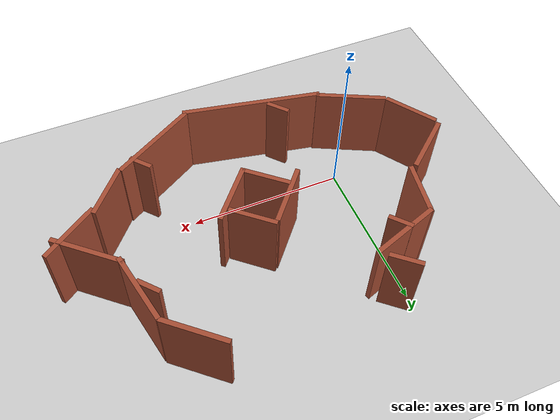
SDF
<sdf version="1.6">
 <world name="default">
  <model name="ground_plane">
   <static>1</static>
   <link name="link">
    <collision name="collision">
     <geometry><plane><normal>0 0 1</normal><size>100 100</size></plane></geometry>
     <surface><friction><ode><mu>100</mu><mu2>50</mu2></ode></friction></surface>
    </collision>
    <visual name="visual">
     <cast_shadows>0</cast_shadows>
     <geometry><plane><normal>0 0 1</normal><size>100 100</size></plane></geometry>
     <material>
      <script><uri>file://media/materials/scripts/gazebo.material</uri><name>Gazebo/Gray</name></script>
     </material>
    </visual>
   </link>
  </model>
  <model name="room5">
   <link name="Wall_37_clone_clone_0">
    <pose>1.55945 9.7192 0 0 -0 2.48357</pose>
    <visual name="Wall_37_Visual">
     <pose>0 0 1.25 0 -0 0</pose>
     <geometry><box><size>0.75 0.15 2.5</size></box></geometry>
     <material>
      <script><uri>file://media/materials/scripts/gazebo.material</uri><name>Gazebo/Bricks</name></script>
      <ambient>1 1 1 1</ambient>
      <shader type="pixel"/>
     </material>
     <meta><layer>0</layer></meta>
    </visual>
    <collision name="Wall_37_Collision">
     <pose>0 0 1.25 0 -0 0</pose>
     <geometry><box><size>0.75 0.15 2.5</size></box></geometry>
     <surface>
      <friction>
       <ode><mu>1</mu><mu2>1</mu2><fdir1>0 0 0</fdir1><slip1>0</slip1><slip2>0</slip2></ode>
       <torsional>
        <coefficient>1</coefficient>
        <patch_radius>0</patch_radius>
        <surface_radius>0</surface_radius>
        <use_patch_radius>1</use_patch_radius>
        <ode><slip>0</slip></ode>
       </torsional>
      </friction>
      <bounce><restitution_coefficient>0</restitution_coefficient><threshold>1e+06</threshold></bounce>
      <contact>
       <collide_without_contact>0</collide_without_contact>
       <collide_without_contact_bitmask>1</collide_without_contact_bitmask>
       <collide_bitmask>1</collide_bitmask>
       <ode>
        <soft_cfm>0</soft_cfm>
        <soft_erp>0.2</soft_erp>
        <kp>1e+13</kp>
        <kd>1</kd>
        <max_vel>0.01</max_vel>
        <min_depth>0</min_depth>
       </ode>
       <bullet>
        <split_impulse>1</split_impulse>
        <split_impulse_penetration_threshold>-0.01</split_impulse_penetration_threshold>
        <soft_cfm>0</soft_cfm>
        <soft_erp>0.2</soft_erp>
        <kp>1e+13</kp>
        <kd>1</kd>
       </bullet>
      </contact>
     </surface>
    </collision>
   </link>
   <link name="Wall_37_clone_clone_1">
    <pose>-3.00765 8.25193 0 0 -0 2.48357</pose>
    <visual name="Wall_37_Visual">
     <pose>0 0 1.25 0 -0 0</pose>
     <geometry><box><size>0.75 0.15 2.5</size></box></geometry>
     <material>
      <script><uri>file://media/materials/scripts/gazebo.material</uri><name>Gazebo/Bricks</name></script>
      <ambient>1 1 1 1</ambient>
      <shader type="pixel"/>
     </material>
     <meta><layer>0</layer></meta>
    </visual>
    <collision name="Wall_37_Collision">
     <pose>0 0 1.25 0 -0 0</pose>
     <geometry><box><size>0.75 0.15 2.5</size></box></geometry>
     <surface>
      <friction>
       <ode><mu>1</mu><mu2>1</mu2><fdir1>0 0 0</fdir1><slip1>0</slip1><slip2>0</slip2></ode>
       <torsional>
        <coefficient>1</coefficient>
        <patch_radius>0</patch_radius>
        <surface_radius>0</surface_radius>
        <use_patch_radius>1</use_patch_radius>
        <ode><slip>0</slip></ode>
       </torsional>
      </friction>
      <bounce><restitution_coefficient>0</restitution_coefficient><threshold>1e+06</threshold></bounce>
      <contact>
       <collide_without_contact>0</collide_without_contact>
       <collide_without_contact_bitmask>1</collide_without_contact_bitmask>
       <collide_bitmask>1</collide_bitmask>
       <ode>
        <soft_cfm>0</soft_cfm>
        <soft_erp>0.2</soft_erp>
        <kp>1e+13</kp>
        <kd>1</kd>
        <max_vel>0.01</max_vel>
        <min_depth>0</min_depth>
       </ode>
       <bullet>
        <split_impulse>1</split_impulse>
        <split_impulse_penetration_threshold>-0.01</split_impulse_penetration_threshold>
        <soft_cfm>0</soft_cfm>
        <soft_erp>0.2</soft_erp>
        <kp>1e+13</kp>
        <kd>1</kd>
       </bullet>
      </contact>
     </surface>
    </collision>
   </link>
   <link name="Wall_37_clone_clone_2">
    <pose>4.01832 4.61639 0 0 -0 2.48357</pose>
    <visual name="Wall_37_Visual">
     <pose>0 0 1.25 0 -0 0</pose>
     <geometry><box><size>0.75 0.15 2.5</size></box></geometry>
     <material>
      <script><uri>file://media/materials/scripts/gazebo.material</uri><name>Gazebo/Bricks</name></script>
      <ambient>1 1 1 1</ambient>
      <shader type="pixel"/>
     </material>
     <meta><layer>0</layer></meta>
    </visual>
    <collision name="Wall_37_Collision">
     <pose>0 0 1.25 0 -0 0</pose>
     <geometry><box><size>0.75 0.15 2.5</size></box></geometry>
     <surface>
      <friction>
       <ode><mu>1</mu><mu2>1</mu2><fdir1>0 0 0</fdir1><slip1>0</slip1><slip2>0</slip2></ode>
       <torsional>
        <coefficient>1</coefficient>
        <patch_radius>0</patch_radius>
        <surface_radius>0</surface_radius>
        <use_patch_radius>1</use_patch_radius>
        <ode><slip>0</slip></ode>
       </torsional>
      </friction>
      <bounce><restitution_coefficient>0</restitution_coefficient><threshold>1e+06</threshold></bounce>
      <contact>
       <collide_without_contact>0</collide_without_contact>
       <collide_without_contact_bitmask>1</collide_without_contact_bitmask>
       <collide_bitmask>1</collide_bitmask>
       <ode>
        <soft_cfm>0</soft_cfm>
        <soft_erp>0.2</soft_erp>
        <kp>1e+13</kp>
        <kd>1</kd>
        <max_vel>0.01</max_vel>
        <min_depth>0</min_depth>
       </ode>
       <bullet>
        <split_impulse>1</split_impulse>
        <split_impulse_penetration_threshold>-0.01</split_impulse_penetration_threshold>
        <soft_cfm>0</soft_cfm>
        <soft_erp>0.2</soft_erp>
        <kp>1e+13</kp>
        <kd>1</kd>
       </bullet>
      </contact>
     </surface>
    </collision>
   </link>
   <link name="Wall_37_clone_clone_7">
    <pose>-3.24115 3.89196 0 0 -0 2.48357</pose>
    <visual name="Wall_37_Visual">
     <pose>0 0 1.25 0 -0 0</pose>
     <geometry><box><size>0.75 0.15 2.5</size></box></geometry>
     <material>
      <script><uri>file://media/materials/scripts/gazebo.material</uri><name>Gazebo/Bricks</name></script>
      <ambient>1 1 1 1</ambient>
      <shader type="pixel"/>
     </material>
     <meta><layer>0</layer></meta>
    </visual>
    <collision name="Wall_37_Collision">
     <pose>0 0 1.25 0 -0 0</pose>
     <geometry><box><size>0.75 0.15 2.5</size></box></geometry>
     <surface>
      <friction>
       <ode><mu>1</mu><mu2>1</mu2><fdir1>0 0 0</fdir1><slip1>0</slip1><slip2>0</slip2></ode>
       <torsional>
        <coefficient>1</coefficient>
        <patch_radius>0</patch_radius>
        <surface_radius>0</surface_radius>
        <use_patch_radius>1</use_patch_radius>
        <ode><slip>0</slip></ode>
       </torsional>
      </friction>
      <bounce><restitution_coefficient>0</restitution_coefficient><threshold>1e+06</threshold></bounce>
      <contact>
       <collide_without_contact>0</collide_without_contact>
       <collide_without_contact_bitmask>1</collide_without_contact_bitmask>
       <collide_bitmask>1</collide_bitmask>
       <ode>
        <soft_cfm>0</soft_cfm>
        <soft_erp>0.2</soft_erp>
        <kp>1e+13</kp>
        <kd>1</kd>
        <max_vel>0.01</max_vel>
        <min_depth>0</min_depth>
       </ode>
       <bullet>
        <split_impulse>1</split_impulse>
        <split_impulse_penetration_threshold>-0.01</split_impulse_penetration_threshold>
        <soft_cfm>0</soft_cfm>
        <soft_erp>0.2</soft_erp>
        <kp>1e+13</kp>
        <kd>1</kd>
       </bullet>
      </contact>
     </surface>
    </collision>
   </link>
   <link name="Wall_41">
    <pose>3.77567 3.35928 0 0 -0 2.61799</pose>
    <visual name="Wall_41_Visual">
     <pose>0 0 1.25 0 -0 0</pose>
     <geometry><box><size>1 0.15 2.5</size></box></geometry>
     <material>
      <script><uri>file://media/materials/scripts/gazebo.material</uri><name>Gazebo/Bricks</name></script>
      <ambient>1 1 1 1</ambient>
      <shader type="pixel"/>
     </material>
     <meta><layer>0</layer></meta>
    </visual>
    <collision name="Wall_41_Collision">
     <pose>0 0 1.25 0 -0 0</pose>
     <geometry><box><size>1 0.15 2.5</size></box></geometry>
     <surface>
      <friction>
       <ode><mu>1</mu><mu2>1</mu2><fdir1>0 0 0</fdir1><slip1>0</slip1><slip2>0</slip2></ode>
       <torsional>
        <coefficient>1</coefficient>
        <patch_radius>0</patch_radius>
        <surface_radius>0</surface_radius>
        <use_patch_radius>1</use_patch_radius>
        <ode><slip>0</slip></ode>
       </torsional>
      </friction>
      <bounce><restitution_coefficient>0</restitution_coefficient><threshold>1e+06</threshold></bounce>
      <contact>
       <collide_without_contact>0</collide_without_contact>
       <collide_without_contact_bitmask>1</collide_without_contact_bitmask>
       <collide_bitmask>1</collide_bitmask>
       <ode>
        <soft_cfm>0</soft_cfm>
        <soft_erp>0.2</soft_erp>
        <kp>1e+13</kp>
        <kd>1</kd>
        <max_vel>0.01</max_vel>
        <min_depth>0</min_depth>
       </ode>
       <bullet>
        <split_impulse>1</split_impulse>
        <split_impulse_penetration_threshold>-0.01</split_impulse_penetration_threshold>
        <soft_cfm>0</soft_cfm>
        <soft_erp>0.2</soft_erp>
        <kp>1e+13</kp>
        <kd>1</kd>
       </bullet>
      </contact>
     </surface>
    </collision>
   </link>
   <link name="Wall_42">
    <pose>4.96556 5.63009 0 0 -0 1.59627</pose>
    <visual name="Wall_42_Visual">
     <pose>0 0 1.25 0 -0 0</pose>
     <geometry><box><size>1.75 0.15 2.5</size></box></geometry>
     <material>
      <script><uri>file://media/materials/scripts/gazebo.material</uri><name>Gazebo/Bricks</name></script>
      <ambient>1 1 1 1</ambient>
      <shader type="pixel"/>
     </material>
     <meta><layer>0</layer></meta>
    </visual>
    <collision name="Wall_42_Collision">
     <pose>0 0 1.25 0 -0 0</pose>
     <geometry><box><size>1.75 0.15 2.5</size></box></geometry>
     <surface>
      <friction>
       <ode><mu>1</mu><mu2>1</mu2><fdir1>0 0 0</fdir1><slip1>0</slip1><slip2>0</slip2></ode>
       <torsional>
        <coefficient>1</coefficient>
        <patch_radius>0</patch_radius>
        <surface_radius>0</surface_radius>
        <use_patch_radius>1</use_patch_radius>
        <ode><slip>0</slip></ode>
       </torsional>
      </friction>
      <bounce><restitution_coefficient>0</restitution_coefficient><threshold>1e+06</threshold></bounce>
      <contact>
       <collide_without_contact>0</collide_without_contact>
       <collide_without_contact_bitmask>1</collide_without_contact_bitmask>
       <collide_bitmask>1</collide_bitmask>
       <ode>
        <soft_cfm>0</soft_cfm>
        <soft_erp>0.2</soft_erp>
        <kp>1e+13</kp>
        <kd>1</kd>
        <max_vel>0.01</max_vel>
        <min_depth>0</min_depth>
       </ode>
       <bullet>
        <split_impulse>1</split_impulse>
        <split_impulse_penetration_threshold>-0.01</split_impulse_penetration_threshold>
        <soft_cfm>0</soft_cfm>
        <soft_erp>0.2</soft_erp>
        <kp>1e+13</kp>
        <kd>1</kd>
       </bullet>
      </contact>
     </surface>
    </collision>
   </link>
   <link name="Wall_43">
    <pose>4.05178 4.29362 0 0 -0 0.523599</pose>
    <visual name="Wall_43_Visual">
     <pose>0 0 1.25 0 -0 0</pose>
     <geometry><box><size>2.25 0.15 2.5</size></box></geometry>
     <material>
      <script><uri>file://media/materials/scripts/gazebo.material</uri><name>Gazebo/Bricks</name></script>
      <ambient>1 1 1 1</ambient>
      <shader type="pixel"/>
     </material>
     <meta><layer>0</layer></meta>
    </visual>
    <collision name="Wall_43_Collision">
     <pose>0 0 1.25 0 -0 0</pose>
     <geometry><box><size>2.25 0.15 2.5</size></box></geometry>
     <surface>
      <friction>
       <ode><mu>1</mu><mu2>1</mu2><fdir1>0 0 0</fdir1><slip1>0</slip1><slip2>0</slip2></ode>
       <torsional>
        <coefficient>1</coefficient>
        <patch_radius>0</patch_radius>
        <surface_radius>0</surface_radius>
        <use_patch_radius>1</use_patch_radius>
        <ode><slip>0</slip></ode>
       </torsional>
      </friction>
      <bounce><restitution_coefficient>0</restitution_coefficient><threshold>1e+06</threshold></bounce>
      <contact>
       <collide_without_contact>0</collide_without_contact>
       <collide_without_contact_bitmask>1</collide_without_contact_bitmask>
       <collide_bitmask>1</collide_bitmask>
       <ode>
        <soft_cfm>0</soft_cfm>
        <soft_erp>0.2</soft_erp>
        <kp>1e+13</kp>
        <kd>1</kd>
        <max_vel>0.01</max_vel>
        <min_depth>0</min_depth>
       </ode>
       <bullet>
        <split_impulse>1</split_impulse>
        <split_impulse_penetration_threshold>-0.01</split_impulse_penetration_threshold>
        <soft_cfm>0</soft_cfm>
        <soft_erp>0.2</soft_erp>
        <kp>1e+13</kp>
        <kd>1</kd>
       </bullet>
      </contact>
     </surface>
    </collision>
   </link>
   <link name="Wall_44">
    <pose>5.71742 8.7902 0 0 -0 2.35619</pose>
    <visual name="Wall_44_Visual">
     <pose>0 0 1.25 0 -0 0</pose>
     <geometry><box><size>1.75 0.15 2.5</size></box></geometry>
     <material>
      <script><uri>file://media/materials/scripts/gazebo.material</uri><name>Gazebo/Bricks</name></script>
      <ambient>1 1 1 1</ambient>
      <shader type="pixel"/>
     </material>
     <meta><layer>0</layer></meta>
    </visual>
    <collision name="Wall_44_Collision">
     <pose>0 0 1.25 0 -0 0</pose>
     <geometry><box><size>1.75 0.15 2.5</size></box></geometry>
     <surface>
      <friction>
       <ode><mu>1</mu><mu2>1</mu2><fdir1>0 0 0</fdir1><slip1>0</slip1><slip2>0</slip2></ode>
       <torsional>
        <coefficient>1</coefficient>
        <patch_radius>0</patch_radius>
        <surface_radius>0</surface_radius>
        <use_patch_radius>1</use_patch_radius>
        <ode><slip>0</slip></ode>
       </torsional>
      </friction>
      <bounce><restitution_coefficient>0</restitution_coefficient><threshold>1e+06</threshold></bounce>
      <contact>
       <collide_without_contact>0</collide_without_contact>
       <collide_without_contact_bitmask>1</collide_without_contact_bitmask>
       <collide_bitmask>1</collide_bitmask>
       <ode>
        <soft_cfm>0</soft_cfm>
        <soft_erp>0.2</soft_erp>
        <kp>1e+13</kp>
        <kd>1</kd>
        <max_vel>0.01</max_vel>
        <min_depth>0</min_depth>
       </ode>
       <bullet>
        <split_impulse>1</split_impulse>
        <split_impulse_penetration_threshold>-0.01</split_impulse_penetration_threshold>
        <soft_cfm>0</soft_cfm>
        <soft_erp>0.2</soft_erp>
        <kp>1e+13</kp>
        <kd>1</kd>
       </bullet>
      </contact>
     </surface>
    </collision>
   </link>
   <link name="Wall_45">
    <pose>5.74153 7.27704 0 0 -0 0.875381</pose>
    <visual name="Wall_45_Visual">
     <pose>0 0 1.25 0 -0 0</pose>
     <geometry><box><size>2 0.15 2.5</size></box></geometry>
     <material>
      <script><uri>file://media/materials/scripts/gazebo.material</uri><name>Gazebo/Bricks</name></script>
      <ambient>1 1 1 1</ambient>
      <shader type="pixel"/>
     </material>
     <meta><layer>0</layer></meta>
    </visual>
    <collision name="Wall_45_Collision">
     <pose>0 0 1.25 0 -0 0</pose>
     <geometry><box><size>2 0.15 2.5</size></box></geometry>
     <surface>
      <friction>
       <ode><mu>1</mu><mu2>1</mu2><fdir1>0 0 0</fdir1><slip1>0</slip1><slip2>0</slip2></ode>
       <torsional>
        <coefficient>1</coefficient>
        <patch_radius>0</patch_radius>
        <surface_radius>0</surface_radius>
        <use_patch_radius>1</use_patch_radius>
        <ode><slip>0</slip></ode>
       </torsional>
      </friction>
      <bounce><restitution_coefficient>0</restitution_coefficient><threshold>1e+06</threshold></bounce>
      <contact>
       <collide_without_contact>0</collide_without_contact>
       <collide_without_contact_bitmask>1</collide_without_contact_bitmask>
       <collide_bitmask>1</collide_bitmask>
       <ode>
        <soft_cfm>0</soft_cfm>
        <soft_erp>0.2</soft_erp>
        <kp>1e+13</kp>
        <kd>1</kd>
        <max_vel>0.01</max_vel>
        <min_depth>0</min_depth>
       </ode>
       <bullet>
        <split_impulse>1</split_impulse>
        <split_impulse_penetration_threshold>-0.01</split_impulse_penetration_threshold>
        <soft_cfm>0</soft_cfm>
        <soft_erp>0.2</soft_erp>
        <kp>1e+13</kp>
        <kd>1</kd>
       </bullet>
      </contact>
     </surface>
    </collision>
   </link>
   <link name="Wall_46">
    <pose>3.99311 9.72466 0 0 -0 2.87979</pose>
    <visual name="Wall_46_Visual">
     <pose>0 0 1.25 0 -0 0</pose>
     <geometry><box><size>2.25 0.15 2.5</size></box></geometry>
     <material>
      <script><uri>file://media/materials/scripts/gazebo.material</uri><name>Gazebo/Bricks</name></script>
      <ambient>1 1 1 1</ambient>
      <shader type="pixel"/>
     </material>
     <meta><layer>0</layer></meta>
    </visual>
    <collision name="Wall_46_Collision">
     <pose>0 0 1.25 0 -0 0</pose>
     <geometry><box><size>2.25 0.15 2.5</size></box></geometry>
     <surface>
      <friction>
       <ode><mu>1</mu><mu2>1</mu2><fdir1>0 0 0</fdir1><slip1>0</slip1><slip2>0</slip2></ode>
       <torsional>
        <coefficient>1</coefficient>
        <patch_radius>0</patch_radius>
        <surface_radius>0</surface_radius>
        <use_patch_radius>1</use_patch_radius>
        <ode><slip>0</slip></ode>
       </torsional>
      </friction>
      <bounce><restitution_coefficient>0</restitution_coefficient><threshold>1e+06</threshold></bounce>
      <contact>
       <collide_without_contact>0</collide_without_contact>
       <collide_without_contact_bitmask>1</collide_without_contact_bitmask>
       <collide_bitmask>1</collide_bitmask>
       <ode>
        <soft_cfm>0</soft_cfm>
        <soft_erp>0.2</soft_erp>
        <kp>1e+13</kp>
        <kd>1</kd>
        <max_vel>0.01</max_vel>
        <min_depth>0</min_depth>
       </ode>
       <bullet>
        <split_impulse>1</split_impulse>
        <split_impulse_penetration_threshold>-0.01</split_impulse_penetration_threshold>
        <soft_cfm>0</soft_cfm>
        <soft_erp>0.2</soft_erp>
        <kp>1e+13</kp>
        <kd>1</kd>
       </bullet>
      </contact>
     </surface>
    </collision>
   </link>
   <link name="Wall_47">
    <pose>0.765407 10.0627 0 0 -0 3.14159</pose>
    <visual name="Wall_47_Visual">
     <pose>0 0 1.25 0 -0 0</pose>
     <geometry><box><size>4.5 0.15 2.5</size></box></geometry>
     <material>
      <script><uri>file://media/materials/scripts/gazebo.material</uri><name>Gazebo/Bricks</name></script>
      <ambient>1 1 1 1</ambient>
      <shader type="pixel"/>
     </material>
     <meta><layer>0</layer></meta>
    </visual>
    <collision name="Wall_47_Collision">
     <pose>0 0 1.25 0 -0 0</pose>
     <geometry><box><size>4.5 0.15 2.5</size></box></geometry>
     <surface>
      <friction>
       <ode><mu>1</mu><mu2>1</mu2><fdir1>0 0 0</fdir1><slip1>0</slip1><slip2>0</slip2></ode>
       <torsional>
        <coefficient>1</coefficient>
        <patch_radius>0</patch_radius>
        <surface_radius>0</surface_radius>
        <use_patch_radius>1</use_patch_radius>
        <ode><slip>0</slip></ode>
       </torsional>
      </friction>
      <bounce><restitution_coefficient>0</restitution_coefficient><threshold>1e+06</threshold></bounce>
      <contact>
       <collide_without_contact>0</collide_without_contact>
       <collide_without_contact_bitmask>1</collide_without_contact_bitmask>
       <collide_bitmask>1</collide_bitmask>
       <ode>
        <soft_cfm>0</soft_cfm>
        <soft_erp>0.2</soft_erp>
        <kp>1e+13</kp>
        <kd>1</kd>
        <max_vel>0.01</max_vel>
        <min_depth>0</min_depth>
       </ode>
       <bullet>
        <split_impulse>1</split_impulse>
        <split_impulse_penetration_threshold>-0.01</split_impulse_penetration_threshold>
        <soft_cfm>0</soft_cfm>
        <soft_erp>0.2</soft_erp>
        <kp>1e+13</kp>
        <kd>1</kd>
       </bullet>
      </contact>
     </surface>
    </collision>
   </link>
   <link name="Wall_48">
    <pose>-2.51161 9.03729 0 0 0 -2.41977</pose>
    <visual name="Wall_48_Visual">
     <pose>0 0 1.25 0 -0 0</pose>
     <geometry><box><size>3 0.15 2.5</size></box></geometry>
     <material>
      <script><uri>file://media/materials/scripts/gazebo.material</uri><name>Gazebo/Bricks</name></script>
      <ambient>1 1 1 1</ambient>
      <shader type="pixel"/>
     </material>
     <meta><layer>0</layer></meta>
    </visual>
    <collision name="Wall_48_Collision">
     <pose>0 0 1.25 0 -0 0</pose>
     <geometry><box><size>3 0.15 2.5</size></box></geometry>
     <surface>
      <friction>
       <ode><mu>1</mu><mu2>1</mu2><fdir1>0 0 0</fdir1><slip1>0</slip1><slip2>0</slip2></ode>
       <torsional>
        <coefficient>1</coefficient>
        <patch_radius>0</patch_radius>
        <surface_radius>0</surface_radius>
        <use_patch_radius>1</use_patch_radius>
        <ode><slip>0</slip></ode>
       </torsional>
      </friction>
      <bounce><restitution_coefficient>0</restitution_coefficient><threshold>1e+06</threshold></bounce>
      <contact>
       <collide_without_contact>0</collide_without_contact>
       <collide_without_contact_bitmask>1</collide_without_contact_bitmask>
       <collide_bitmask>1</collide_bitmask>
       <ode>
        <soft_cfm>0</soft_cfm>
        <soft_erp>0.2</soft_erp>
        <kp>1e+13</kp>
        <kd>1</kd>
        <max_vel>0.01</max_vel>
        <min_depth>0</min_depth>
       </ode>
       <bullet>
        <split_impulse>1</split_impulse>
        <split_impulse_penetration_threshold>-0.01</split_impulse_penetration_threshold>
        <soft_cfm>0</soft_cfm>
        <soft_erp>0.2</soft_erp>
        <kp>1e+13</kp>
        <kd>1</kd>
       </bullet>
      </contact>
     </surface>
    </collision>
   </link>
   <link name="Wall_49">
    <pose>-4.79774 5.36141 0 0 0 -0.5236</pose>
    <visual name="Wall_49_Visual">
     <pose>0 0 1.25 0 -0 0</pose>
     <geometry><box><size>2.25 0.15 2.5</size></box></geometry>
     <material>
      <script><uri>file://media/materials/scripts/gazebo.material</uri><name>Gazebo/Bricks</name></script>
      <ambient>1 1 1 1</ambient>
      <shader type="pixel"/>
     </material>
     <meta><layer>0</layer></meta>
    </visual>
    <collision name="Wall_49_Collision">
     <pose>0 0 1.25 0 -0 0</pose>
     <geometry><box><size>2.25 0.15 2.5</size></box></geometry>
     <surface>
      <friction>
       <ode><mu>1</mu><mu2>1</mu2><fdir1>0 0 0</fdir1><slip1>0</slip1><slip2>0</slip2></ode>
       <torsional>
        <coefficient>1</coefficient>
        <patch_radius>0</patch_radius>
        <surface_radius>0</surface_radius>
        <use_patch_radius>1</use_patch_radius>
        <ode><slip>0</slip></ode>
       </torsional>
      </friction>
      <bounce><restitution_coefficient>0</restitution_coefficient><threshold>1e+06</threshold></bounce>
      <contact>
       <collide_without_contact>0</collide_without_contact>
       <collide_without_contact_bitmask>1</collide_without_contact_bitmask>
       <collide_bitmask>1</collide_bitmask>
       <ode>
        <soft_cfm>0</soft_cfm>
        <soft_erp>0.2</soft_erp>
        <kp>1e+13</kp>
        <kd>1</kd>
        <max_vel>0.01</max_vel>
        <min_depth>0</min_depth>
       </ode>
       <bullet>
        <split_impulse>1</split_impulse>
        <split_impulse_penetration_threshold>-0.01</split_impulse_penetration_threshold>
        <soft_cfm>0</soft_cfm>
        <soft_erp>0.2</soft_erp>
        <kp>1e+13</kp>
        <kd>1</kd>
       </bullet>
      </contact>
     </surface>
    </collision>
   </link>
   <link name="Wall_50">
    <pose>-4.09023 7.35677 0 0 0 -2.0944</pose>
    <visual name="Wall_50_Visual">
     <pose>0 0 1.25 0 -0 0</pose>
     <geometry><box><size>1.75 0.15 2.5</size></box></geometry>
     <material>
      <script><uri>file://media/materials/scripts/gazebo.material</uri><name>Gazebo/Bricks</name></script>
      <ambient>1 1 1 1</ambient>
      <shader type="pixel"/>
     </material>
     <meta><layer>0</layer></meta>
    </visual>
    <collision name="Wall_50_Collision">
     <pose>0 0 1.25 0 -0 0</pose>
     <geometry><box><size>1.75 0.15 2.5</size></box></geometry>
     <surface>
      <friction>
       <ode><mu>1</mu><mu2>1</mu2><fdir1>0 0 0</fdir1><slip1>0</slip1><slip2>0</slip2></ode>
       <torsional>
        <coefficient>1</coefficient>
        <patch_radius>0</patch_radius>
        <surface_radius>0</surface_radius>
        <use_patch_radius>1</use_patch_radius>
        <ode><slip>0</slip></ode>
       </torsional>
      </friction>
      <bounce><restitution_coefficient>0</restitution_coefficient><threshold>1e+06</threshold></bounce>
      <contact>
       <collide_without_contact>0</collide_without_contact>
       <collide_without_contact_bitmask>1</collide_without_contact_bitmask>
       <collide_bitmask>1</collide_bitmask>
       <ode>
        <soft_cfm>0</soft_cfm>
        <soft_erp>0.2</soft_erp>
        <kp>1e+13</kp>
        <kd>1</kd>
        <max_vel>0.01</max_vel>
        <min_depth>0</min_depth>
       </ode>
       <bullet>
        <split_impulse>1</split_impulse>
        <split_impulse_penetration_threshold>-0.01</split_impulse_penetration_threshold>
        <soft_cfm>0</soft_cfm>
        <soft_erp>0.2</soft_erp>
        <kp>1e+13</kp>
        <kd>1</kd>
       </bullet>
      </contact>
     </surface>
    </collision>
   </link>
   <link name="Wall_51">
    <pose>-3.51953 3.90576 0 0 0 -1.1821</pose>
    <visual name="Wall_51_Visual">
     <pose>0 0 1.25 0 -0 0</pose>
     <geometry><box><size>2.25 0.15 2.5</size></box></geometry>
     <material>
      <script><uri>file://media/materials/scripts/gazebo.material</uri><name>Gazebo/Bricks</name></script>
      <ambient>1 1 1 1</ambient>
      <shader type="pixel"/>
     </material>
     <meta><layer>0</layer></meta>
    </visual>
    <collision name="Wall_51_Collision">
     <pose>0 0 1.25 0 -0 0</pose>
     <geometry><box><size>2.25 0.15 2.5</size></box></geometry>
     <surface>
      <friction>
       <ode><mu>1</mu><mu2>1</mu2><fdir1>0 0 0</fdir1><slip1>0</slip1><slip2>0</slip2></ode>
       <torsional>
        <coefficient>1</coefficient>
        <patch_radius>0</patch_radius>
        <surface_radius>0</surface_radius>
        <use_patch_radius>1</use_patch_radius>
        <ode><slip>0</slip></ode>
       </torsional>
      </friction>
      <bounce><restitution_coefficient>0</restitution_coefficient><threshold>1e+06</threshold></bounce>
      <contact>
       <collide_without_contact>0</collide_without_contact>
       <collide_without_contact_bitmask>1</collide_without_contact_bitmask>
       <collide_bitmask>1</collide_bitmask>
       <ode>
        <soft_cfm>0</soft_cfm>
        <soft_erp>0.2</soft_erp>
        <kp>1e+13</kp>
        <kd>1</kd>
        <max_vel>0.01</max_vel>
        <min_depth>0</min_depth>
       </ode>
       <bullet>
        <split_impulse>1</split_impulse>
        <split_impulse_penetration_threshold>-0.01</split_impulse_penetration_threshold>
        <soft_cfm>0</soft_cfm>
        <soft_erp>0.2</soft_erp>
        <kp>1e+13</kp>
        <kd>1</kd>
       </bullet>
      </contact>
     </surface>
    </collision>
   </link>
   <link name="Wall_52">
    <pose>-5.23027 6.06775 0 0 0 -2.35619</pose>
    <visual name="Wall_52_Visual">
     <pose>0 0 1.25 0 -0 0</pose>
     <geometry><box><size>2 0.15 2.5</size></box></geometry>
     <material>
      <script><uri>file://media/materials/scripts/gazebo.material</uri><name>Gazebo/Bricks</name></script>
      <ambient>1 1 1 1</ambient>
      <shader type="pixel"/>
     </material>
     <meta><layer>0</layer></meta>
    </visual>
    <collision name="Wall_52_Collision">
     <pose>0 0 1.25 0 -0 0</pose>
     <geometry><box><size>2 0.15 2.5</size></box></geometry>
     <surface>
      <friction>
       <ode><mu>1</mu><mu2>1</mu2><fdir1>0 0 0</fdir1><slip1>0</slip1><slip2>0</slip2></ode>
       <torsional>
        <coefficient>1</coefficient>
        <patch_radius>0</patch_radius>
        <surface_radius>0</surface_radius>
        <use_patch_radius>1</use_patch_radius>
        <ode><slip>0</slip></ode>
       </torsional>
      </friction>
      <bounce><restitution_coefficient>0</restitution_coefficient><threshold>1e+06</threshold></bounce>
      <contact>
       <collide_without_contact>0</collide_without_contact>
       <collide_without_contact_bitmask>1</collide_without_contact_bitmask>
       <collide_bitmask>1</collide_bitmask>
       <ode>
        <soft_cfm>0</soft_cfm>
        <soft_erp>0.2</soft_erp>
        <kp>1e+13</kp>
        <kd>1</kd>
        <max_vel>0.01</max_vel>
        <min_depth>0</min_depth>
       </ode>
       <bullet>
        <split_impulse>1</split_impulse>
        <split_impulse_penetration_threshold>-0.01</split_impulse_penetration_threshold>
        <soft_cfm>0</soft_cfm>
        <soft_erp>0.2</soft_erp>
        <kp>1e+13</kp>
        <kd>1</kd>
       </bullet>
      </contact>
     </surface>
    </collision>
   </link>
   <link name="Wall_53">
    <pose>-2.23543 2.35912 0 0 0 -0.523599</pose>
    <visual name="Wall_53_Visual">
     <pose>0 0 1.25 0 -0 0</pose>
     <geometry><box><size>2 0.15 2.5</size></box></geometry>
     <material>
      <script><uri>file://media/materials/scripts/gazebo.material</uri><name>Gazebo/Bricks</name></script>
      <ambient>1 1 1 1</ambient>
      <shader type="pixel"/>
     </material>
     <meta><layer>0</layer></meta>
    </visual>
    <collision name="Wall_53_Collision">
     <pose>0 0 1.25 0 -0 0</pose>
     <geometry><box><size>2 0.15 2.5</size></box></geometry>
     <surface>
      <friction>
       <ode><mu>1</mu><mu2>1</mu2><fdir1>0 0 0</fdir1><slip1>0</slip1><slip2>0</slip2></ode>
       <torsional>
        <coefficient>1</coefficient>
        <patch_radius>0</patch_radius>
        <surface_radius>0</surface_radius>
        <use_patch_radius>1</use_patch_radius>
        <ode><slip>0</slip></ode>
       </torsional>
      </friction>
      <bounce><restitution_coefficient>0</restitution_coefficient><threshold>1e+06</threshold></bounce>
      <contact>
       <collide_without_contact>0</collide_without_contact>
       <collide_without_contact_bitmask>1</collide_without_contact_bitmask>
       <collide_bitmask>1</collide_bitmask>
       <ode>
        <soft_cfm>0</soft_cfm>
        <soft_erp>0.2</soft_erp>
        <kp>1e+13</kp>
        <kd>1</kd>
        <max_vel>0.01</max_vel>
        <min_depth>0</min_depth>
       </ode>
       <bullet>
        <split_impulse>1</split_impulse>
        <split_impulse_penetration_threshold>-0.01</split_impulse_penetration_threshold>
        <soft_cfm>0</soft_cfm>
        <soft_erp>0.2</soft_erp>
        <kp>1e+13</kp>
        <kd>1</kd>
       </bullet>
      </contact>
     </surface>
    </collision>
   </link>
   <link name="Wall_56">
    <pose>-0.507863 6.5457 0 0 0 -2.0944</pose>
    <visual name="Wall_56_Visual">
     <pose>0 0 1.25 0 -0 0</pose>
     <geometry><box><size>2 0.15 2.5</size></box></geometry>
     <material>
      <script><uri>file://media/materials/scripts/gazebo.material</uri><name>Gazebo/Bricks</name></script>
      <ambient>1 1 1 1</ambient>
      <shader type="pixel"/>
     </material>
     <meta><layer>0</layer></meta>
    </visual>
    <collision name="Wall_56_Collision">
     <pose>0 0 1.25 0 -0 0</pose>
     <geometry><box><size>2 0.15 2.5</size></box></geometry>
     <surface>
      <friction>
       <ode><mu>1</mu><mu2>1</mu2><fdir1>0 0 0</fdir1><slip1>0</slip1><slip2>0</slip2></ode>
       <torsional>
        <coefficient>1</coefficient>
        <patch_radius>0</patch_radius>
        <surface_radius>0</surface_radius>
        <use_patch_radius>1</use_patch_radius>
        <ode><slip>0</slip></ode>
       </torsional>
      </friction>
      <bounce><restitution_coefficient>0</restitution_coefficient><threshold>1e+06</threshold></bounce>
      <contact>
       <collide_without_contact>0</collide_without_contact>
       <collide_without_contact_bitmask>1</collide_without_contact_bitmask>
       <collide_bitmask>1</collide_bitmask>
       <ode>
        <soft_cfm>0</soft_cfm>
        <soft_erp>0.2</soft_erp>
        <kp>1e+13</kp>
        <kd>1</kd>
        <max_vel>0.01</max_vel>
        <min_depth>0</min_depth>
       </ode>
       <bullet>
        <split_impulse>1</split_impulse>
        <split_impulse_penetration_threshold>-0.01</split_impulse_penetration_threshold>
        <soft_cfm>0</soft_cfm>
        <soft_erp>0.2</soft_erp>
        <kp>1e+13</kp>
        <kd>1</kd>
       </bullet>
      </contact>
     </surface>
    </collision>
   </link>
   <link name="Wall_57">
    <pose>-0.065412 5.61672 0 0 0 -0.5236</pose>
    <visual name="Wall_57_Visual">
     <pose>0 0 1.25 0 -0 0</pose>
     <geometry><box><size>1.5 0.15 2.5</size></box></geometry>
     <material>
      <script><uri>file://media/materials/scripts/gazebo.material</uri><name>Gazebo/Bricks</name></script>
      <ambient>1 1 1 1</ambient>
      <shader type="pixel"/>
     </material>
     <meta><layer>0</layer></meta>
    </visual>
    <collision name="Wall_57_Collision">
     <pose>0 0 1.25 0 -0 0</pose>
     <geometry><box><size>1.5 0.15 2.5</size></box></geometry>
     <surface>
      <friction>
       <ode><mu>1</mu><mu2>1</mu2><fdir1>0 0 0</fdir1><slip1>0</slip1><slip2>0</slip2></ode>
       <torsional>
        <coefficient>1</coefficient>
        <patch_radius>0</patch_radius>
        <surface_radius>0</surface_radius>
        <use_patch_radius>1</use_patch_radius>
        <ode><slip>0</slip></ode>
       </torsional>
      </friction>
      <bounce><restitution_coefficient>0</restitution_coefficient><threshold>1e+06</threshold></bounce>
      <contact>
       <collide_without_contact>0</collide_without_contact>
       <collide_without_contact_bitmask>1</collide_without_contact_bitmask>
       <collide_bitmask>1</collide_bitmask>
       <ode>
        <soft_cfm>0</soft_cfm>
        <soft_erp>0.2</soft_erp>
        <kp>1e+13</kp>
        <kd>1</kd>
        <max_vel>0.01</max_vel>
        <min_depth>0</min_depth>
       </ode>
       <bullet>
        <split_impulse>1</split_impulse>
        <split_impulse_penetration_threshold>-0.01</split_impulse_penetration_threshold>
        <soft_cfm>0</soft_cfm>
        <soft_erp>0.2</soft_erp>
        <kp>1e+13</kp>
        <kd>1</kd>
       </bullet>
      </contact>
     </surface>
    </collision>
   </link>
   <link name="Wall_58">
    <pose>1.08722 6.18595 0 0 -0 1.0472</pose>
    <visual name="Wall_58_Visual">
     <pose>0 0 1.25 0 -0 0</pose>
     <geometry><box><size>2 0.15 2.5</size></box></geometry>
     <material>
      <script><uri>file://media/materials/scripts/gazebo.material</uri><name>Gazebo/Bricks</name></script>
      <ambient>1 1 1 1</ambient>
      <shader type="pixel"/>
     </material>
     <meta><layer>0</layer></meta>
    </visual>
    <collision name="Wall_58_Collision">
     <pose>0 0 1.25 0 -0 0</pose>
     <geometry><box><size>2 0.15 2.5</size></box></geometry>
     <surface>
      <friction>
       <ode><mu>1</mu><mu2>1</mu2><fdir1>0 0 0</fdir1><slip1>0</slip1><slip2>0</slip2></ode>
       <torsional>
        <coefficient>1</coefficient>
        <patch_radius>0</patch_radius>
        <surface_radius>0</surface_radius>
        <use_patch_radius>1</use_patch_radius>
        <ode><slip>0</slip></ode>
       </torsional>
      </friction>
      <bounce><restitution_coefficient>0</restitution_coefficient><threshold>1e+06</threshold></bounce>
      <contact>
       <collide_without_contact>0</collide_without_contact>
       <collide_without_contact_bitmask>1</collide_without_contact_bitmask>
       <collide_bitmask>1</collide_bitmask>
       <ode>
        <soft_cfm>0</soft_cfm>
        <soft_erp>0.2</soft_erp>
        <kp>1e+13</kp>
        <kd>1</kd>
        <max_vel>0.01</max_vel>
        <min_depth>0</min_depth>
       </ode>
       <bullet>
        <split_impulse>1</split_impulse>
        <split_impulse_penetration_threshold>-0.01</split_impulse_penetration_threshold>
        <soft_cfm>0</soft_cfm>
        <soft_erp>0.2</soft_erp>
        <kp>1e+13</kp>
        <kd>1</kd>
       </bullet>
      </contact>
     </surface>
    </collision>
   </link>
   <link name="Wall_59">
    <pose>0.609436 6.97343 0 0 -0 2.61799</pose>
    <visual name="Wall_59_Visual">
     <pose>0 0 1.25 0 -0 0</pose>
     <geometry><box><size>1.5 0.15 2.5</size></box></geometry>
     <material>
      <script><uri>file://media/materials/scripts/gazebo.material</uri><name>Gazebo/Bricks</name></script>
      <ambient>1 1 1 1</ambient>
      <shader type="pixel"/>
     </material>
     <meta><layer>0</layer></meta>
    </visual>
    <collision name="Wall_59_Collision">
     <pose>0 0 1.25 0 -0 0</pose>
     <geometry><box><size>1.5 0.15 2.5</size></box></geometry>
     <surface>
      <friction>
       <ode><mu>1</mu><mu2>1</mu2><fdir1>0 0 0</fdir1><slip1>0</slip1><slip2>0</slip2></ode>
       <torsional>
        <coefficient>1</coefficient>
        <patch_radius>0</patch_radius>
        <surface_radius>0</surface_radius>
        <use_patch_radius>1</use_patch_radius>
        <ode><slip>0</slip></ode>
       </torsional>
      </friction>
      <bounce><restitution_coefficient>0</restitution_coefficient><threshold>1e+06</threshold></bounce>
      <contact>
       <collide_without_contact>0</collide_without_contact>
       <collide_without_contact_bitmask>1</collide_without_contact_bitmask>
       <collide_bitmask>1</collide_bitmask>
       <ode>
        <soft_cfm>0</soft_cfm>
        <soft_erp>0.2</soft_erp>
        <kp>1e+13</kp>
        <kd>1</kd>
        <max_vel>0.01</max_vel>
        <min_depth>0</min_depth>
       </ode>
       <bullet>
        <split_impulse>1</split_impulse>
        <split_impulse_penetration_threshold>-0.01</split_impulse_penetration_threshold>
        <soft_cfm>0</soft_cfm>
        <soft_erp>0.2</soft_erp>
        <kp>1e+13</kp>
        <kd>1</kd>
       </bullet>
      </contact>
     </surface>
    </collision>
   </link>
   <static>1</static>
   <pose>4.86537 7.64263 0 0 -0 2.94701</pose>
  </model>
 </world>
</sdf>
